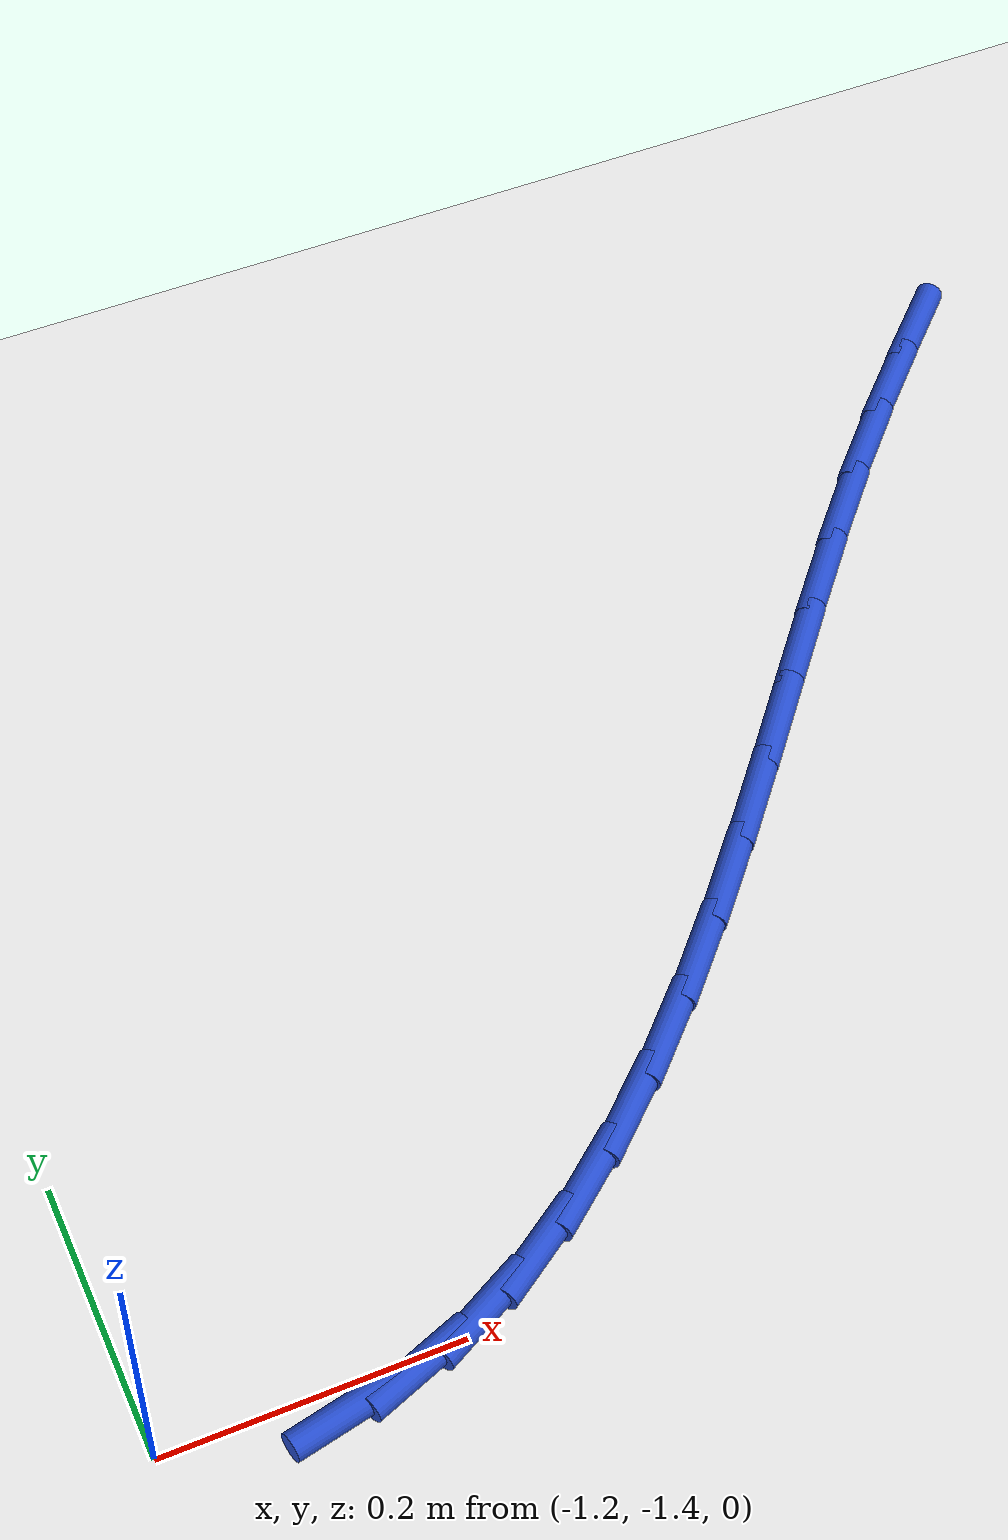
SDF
<sdf version="1.6">
 <world name="default">
  <model name="ground_plane">
   <static>1</static>
   <link name="link">
    <collision name="collision">
     <geometry><plane><normal>0 0 1</normal><size>100 100</size></plane></geometry>
     <surface><friction><ode><mu>100</mu><mu2>50</mu2></ode></friction></surface>
    </collision>
    <visual name="visual">
     <cast_shadows>0</cast_shadows>
     <geometry><plane><normal>0 0 1</normal><size>100 100</size></plane></geometry>
     <material>
      <script><uri>file://media/materials/scripts/gazebo.material</uri><name>Gazebo/WhiteGlow</name></script>
     </material>
    </visual>
   </link>
  </model>
  <model name="line">
   <link name="link_100">
    <pose>-1.0863930262461412 -1.421479803148027 0.01 0 1.57 0.21196275591541805</pose>
    <collision name="collision">
     <geometry><cylinder><radius>0.01</radius><length>0.08</length></cylinder></geometry>
    </collision>
    <visual name="visual">
     <material>
      <script><name>Gazebo/Blue</name><uri>file://media/materials/scripts/gazebo.material</uri></script>
     </material>
     <geometry><cylinder><radius>0.01</radius><length>0.08</length></cylinder></geometry>
    </visual>
   </link>
   <link name="link_101">
    <pose>-1.0359229106399492 -1.4106188750561786 0.01 0 1.57 0.36625126265267793</pose>
    <collision name="collision">
     <geometry><cylinder><radius>0.01</radius><length>0.08</length></cylinder></geometry>
    </collision>
    <visual name="visual">
     <material>
      <script><name>Gazebo/Blue</name><uri>file://media/materials/scripts/gazebo.material</uri></script>
     </material>
     <geometry><cylinder><radius>0.01</radius><length>0.08</length></cylinder></geometry>
    </visual>
   </link>
   <link name="link_102">
    <pose>-0.9866813388238034 -1.3917319395890881 0.01 0 1.57 0.4966579377037363</pose>
    <collision name="collision">
     <geometry><cylinder><radius>0.01</radius><length>0.08</length></cylinder></geometry>
    </collision>
    <visual name="visual">
     <material>
      <script><name>Gazebo/Blue</name><uri>file://media/materials/scripts/gazebo.material</uri></script>
     </material>
     <geometry><cylinder><radius>0.01</radius><length>0.08</length></cylinder></geometry>
    </visual>
   </link>
   <link name="link_103">
    <pose>-0.9385439109220728 -1.3656428547806285 0.01 0 1.57 0.6029561590128979</pose>
    <collision name="collision">
     <geometry><cylinder><radius>0.01</radius><length>0.08</length></cylinder></geometry>
    </collision>
    <visual name="visual">
     <material>
      <script><name>Gazebo/Blue</name><uri>file://media/materials/scripts/gazebo.material</uri></script>
     </material>
     <geometry><cylinder><radius>0.01</radius><length>0.08</length></cylinder></geometry>
    </visual>
   </link>
   <link name="link_104">
    <pose>-0.8913862270591251 -1.3331754786646717 0.01 0 1.57 0.6875131927590756</pose>
    <collision name="collision">
     <geometry><cylinder><radius>0.01</radius><length>0.08</length></cylinder></geometry>
    </collision>
    <visual name="visual">
     <material>
      <script><name>Gazebo/Blue</name><uri>file://media/materials/scripts/gazebo.material</uri></script>
     </material>
     <geometry><cylinder><radius>0.01</radius><length>0.08</length></cylinder></geometry>
    </visual>
   </link>
   <link name="link_105">
    <pose>-0.8450838873593279 -1.2951536692750905 0.01 0 1.57 0.7534922130172242</pose>
    <collision name="collision">
     <geometry><cylinder><radius>0.01</radius><length>0.08</length></cylinder></geometry>
    </collision>
    <visual name="visual">
     <material>
      <script><name>Gazebo/Blue</name><uri>file://media/materials/scripts/gazebo.material</uri></script>
     </material>
     <geometry><cylinder><radius>0.01</radius><length>0.08</length></cylinder></geometry>
    </visual>
   </link>
   <link name="link_106">
    <pose>-0.7995124919470495 -1.2524012846457573 0.01 0 1.57 0.8038874090244446</pose>
    <collision name="collision">
     <geometry><cylinder><radius>0.01</radius><length>0.08</length></cylinder></geometry>
    </collision>
    <visual name="visual">
     <material>
      <script><name>Gazebo/Blue</name><uri>file://media/materials/scripts/gazebo.material</uri></script>
     </material>
     <geometry><cylinder><radius>0.01</radius><length>0.08</length></cylinder></geometry>
    </visual>
   </link>
   <link name="link_107">
    <pose>-0.7545476409466575 -1.2057421828105441 0.01 0 1.57 0.8411564190958062</pose>
    <collision name="collision">
     <geometry><cylinder><radius>0.01</radius><length>0.08</length></cylinder></geometry>
    </collision>
    <visual name="visual">
     <material>
      <script><name>Gazebo/Blue</name><uri>file://media/materials/scripts/gazebo.material</uri></script>
     </material>
     <geometry><cylinder><radius>0.01</radius><length>0.08</length></cylinder></geometry>
    </visual>
   </link>
   <link name="link_108">
    <pose>-0.7100649344825208 -1.1560002218033238 0.01 0 1.57 0.8671497476611333</pose>
    <collision name="collision">
     <geometry><cylinder><radius>0.01</radius><length>0.08</length></cylinder></geometry>
    </collision>
    <visual name="visual">
     <material>
      <script><name>Gazebo/Blue</name><uri>file://media/materials/scripts/gazebo.material</uri></script>
     </material>
     <geometry><cylinder><radius>0.01</radius><length>0.08</length></cylinder></geometry>
    </visual>
   </link>
   <link name="link_109">
    <pose>-0.665939972679007 -1.1039992596579689 0.01 0 1.57 0.8831510689806001</pose>
    <collision name="collision">
     <geometry><cylinder><radius>0.01</radius><length>0.08</length></cylinder></geometry>
    </collision>
    <visual name="visual">
     <material>
      <script><name>Gazebo/Blue</name><uri>file://media/materials/scripts/gazebo.material</uri></script>
     </material>
     <geometry><cylinder><radius>0.01</radius><length>0.08</length></cylinder></geometry>
    </visual>
   </link>
   <link name="link_110">
    <pose>-0.6220483556604832 -1.0505631544083511 0.01 0 1.57 0.8899396162447394</pose>
    <collision name="collision">
     <geometry><cylinder><radius>0.01</radius><length>0.08</length></cylinder></geometry>
    </collision>
    <visual name="visual">
     <material>
      <script><name>Gazebo/Blue</name><uri>file://media/materials/scripts/gazebo.material</uri></script>
     </material>
     <geometry><cylinder><radius>0.01</radius><length>0.08</length></cylinder></geometry>
    </visual>
   </link>
   <link name="link_111">
    <pose>-0.5782656835513191 -0.9965157640883445 0.01 0 1.57 0.8878385568088865</pose>
    <collision name="collision">
     <geometry><cylinder><radius>0.01</radius><length>0.08</length></cylinder></geometry>
    </collision>
    <visual name="visual">
     <material>
      <script><name>Gazebo/Blue</name><uri>file://media/materials/scripts/gazebo.material</uri></script>
     </material>
     <geometry><cylinder><radius>0.01</radius><length>0.08</length></cylinder></geometry>
    </visual>
   </link>
   <link name="link_112">
    <pose>-0.5344675564758817 -0.9426809467318203 0.01 0 1.57 0.8767366221784484</pose>
    <collision name="collision">
     <geometry><cylinder><radius>0.01</radius><length>0.08</length></cylinder></geometry>
    </collision>
    <visual name="visual">
     <material>
      <script><name>Gazebo/Blue</name><uri>file://media/materials/scripts/gazebo.material</uri></script>
     </material>
     <geometry><cylinder><radius>0.01</radius><length>0.08</length></cylinder></geometry>
    </visual>
   </link>
   <link name="link_113">
    <pose>-0.49052957455853924 -0.8898825603726515 0.01 0 1.57 0.8560794357463138</pose>
    <collision name="collision">
     <geometry><cylinder><radius>0.01</radius><length>0.08</length></cylinder></geometry>
    </collision>
    <visual name="visual">
     <material>
      <script><name>Gazebo/Blue</name><uri>file://media/materials/scripts/gazebo.material</uri></script>
     </material>
     <geometry><cylinder><radius>0.01</radius><length>0.08</length></cylinder></geometry>
    </visual>
   </link>
   <link name="link_114">
    <pose>-0.4463273379236597 -0.8389444630447103 0.01 0 1.57 0.8261002575739606</pose>
    <collision name="collision">
     <geometry><cylinder><radius>0.01</radius><length>0.08</length></cylinder></geometry>
    </collision>
    <visual name="visual">
     <material>
      <script><name>Gazebo/Blue</name><uri>file://media/materials/scripts/gazebo.material</uri></script>
     </material>
     <geometry><cylinder><radius>0.01</radius><length>0.08</length></cylinder></geometry>
    </visual>
   </link>
   <link name="link_115">
    <pose>-0.40177151514771164 -0.7906055402512424 0.01 0 1.57 0.8003112422047863</pose>
    <collision name="collision">
     <geometry><cylinder><radius>0.01</radius><length>0.08</length></cylinder></geometry>
    </collision>
    <visual name="visual">
     <material>
      <script><name>Gazebo/Blue</name><uri>file://media/materials/scripts/gazebo.material</uri></script>
     </material>
     <geometry><cylinder><radius>0.01</radius><length>0.08</length></cylinder></geometry>
    </visual>
   </link>
   <link name="link_116">
    <pose>-0.35716672471266064 -0.7446501181008154 0.01 0 1.57 0.7886377177057075</pose>
    <collision name="collision">
     <geometry><cylinder><radius>0.01</radius><length>0.08</length></cylinder></geometry>
    </collision>
    <visual name="visual">
     <material>
      <script><name>Gazebo/Blue</name><uri>file://media/materials/scripts/gazebo.material</uri></script>
     </material>
     <geometry><cylinder><radius>0.01</radius><length>0.08</length></cylinder></geometry>
    </visual>
   </link>
  </model>
 </world>
</sdf>
